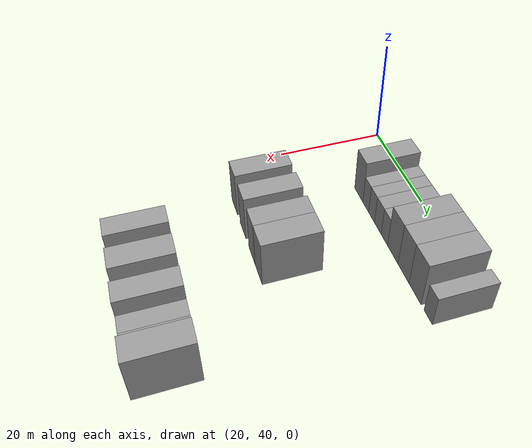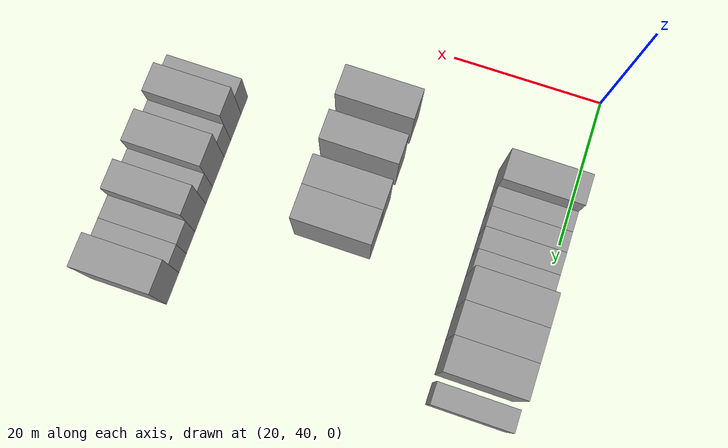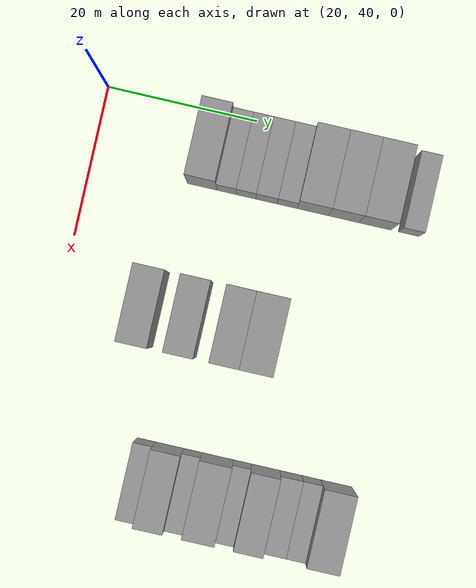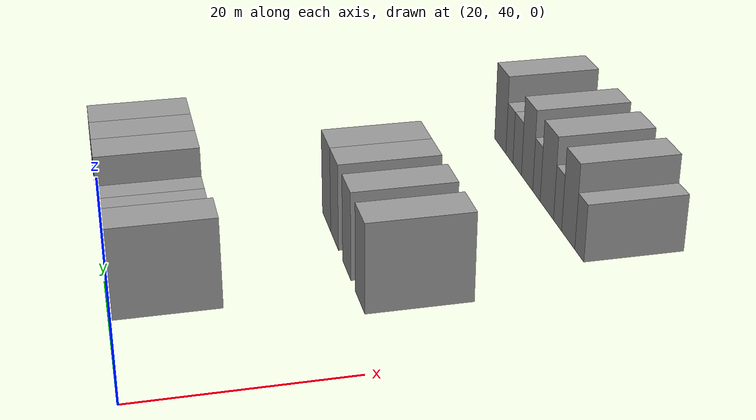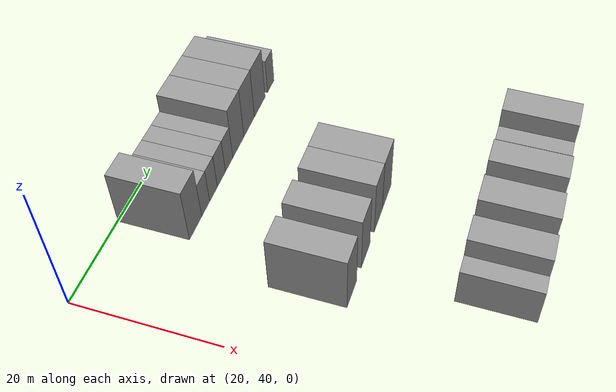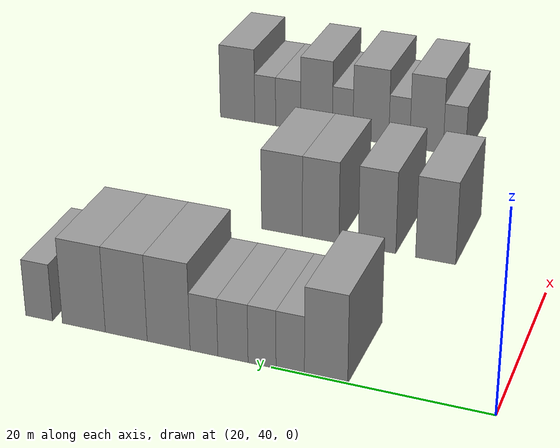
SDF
<sdf version="1.6">
 <world name="default">
  <model name="building_76">
   <static>1</static>
   <pose>25.0000 54.9735 0 0.000000 0.000000 0.000000</pose>
   <link name="link">
    <pose>0 0 4.50 0 0 0</pose>
    <collision name="collision"><geometry><box><size>10.0000 3.9475 9.0000</size></box></geometry></collision>
    <visual name="visual">
     <cast_shadows>0</cast_shadows>
     <geometry><box><size>10.0000 3.9475 9.0000</size></box></geometry>
     <material>
      <script>
       <uri>model://grey_wall/materials/scripts</uri>
       <uri>model://grey_wall/materials/textures</uri>
       <name>vrc/grey_wall</name>
      </script>
     </material>
    </visual>
   </link>
  </model>
  <model name="building_77">
   <static>1</static>
   <pose>25.0000 58.2599 0 0.000000 0.000000 0.000000</pose>
   <link name="link">
    <pose>0 0 3.00 0 0 0</pose>
    <collision name="collision"><geometry><box><size>10.0000 2.6252 6.0000</size></box></geometry></collision>
    <visual name="visual">
     <cast_shadows>0</cast_shadows>
     <geometry><box><size>10.0000 2.6252 6.0000</size></box></geometry>
     <material>
      <script>
       <uri>model://grey_wall/materials/scripts</uri>
       <uri>model://grey_wall/materials/textures</uri>
       <name>vrc/grey_wall</name>
      </script>
     </material>
    </visual>
   </link>
  </model>
  <model name="building_78">
   <static>1</static>
   <pose>25.0000 60.8814 0 0.000000 0.000000 0.000000</pose>
   <link name="link">
    <pose>0 0 3.00 0 0 0</pose>
    <collision name="collision"><geometry><box><size>10.0000 2.6178 6.0000</size></box></geometry></collision>
    <visual name="visual">
     <cast_shadows>0</cast_shadows>
     <geometry><box><size>10.0000 2.6178 6.0000</size></box></geometry>
     <material>
      <script>
       <uri>model://grey_wall/materials/scripts</uri>
       <uri>model://grey_wall/materials/textures</uri>
       <name>vrc/grey_wall</name>
      </script>
     </material>
    </visual>
   </link>
  </model>
  <model name="building_79">
   <static>1</static>
   <pose>25.0000 63.6194 0 0.000000 0.000000 0.000000</pose>
   <link name="link">
    <pose>0 0 3.00 0 0 0</pose>
    <collision name="collision"><geometry><box><size>10.0000 2.8582 6.0000</size></box></geometry></collision>
    <visual name="visual">
     <cast_shadows>0</cast_shadows>
     <geometry><box><size>10.0000 2.8582 6.0000</size></box></geometry>
     <material>
      <script>
       <uri>model://grey_wall/materials/scripts</uri>
       <uri>model://grey_wall/materials/textures</uri>
       <name>vrc/grey_wall</name>
      </script>
     </material>
    </visual>
   </link>
  </model>
  <model name="building_80">
   <static>1</static>
   <pose>25.0000 66.3783 0 0.000000 0.000000 0.000000</pose>
   <link name="link">
    <pose>0 0 3.00 0 0 0</pose>
    <collision name="collision"><geometry><box><size>10.0000 2.6597 6.0000</size></box></geometry></collision>
    <visual name="visual">
     <cast_shadows>0</cast_shadows>
     <geometry><box><size>10.0000 2.6597 6.0000</size></box></geometry>
     <material>
      <script>
       <uri>model://grey_wall/materials/scripts</uri>
       <uri>model://grey_wall/materials/textures</uri>
       <name>vrc/grey_wall</name>
      </script>
     </material>
    </visual>
   </link>
  </model>
  <model name="building_81">
   <static>1</static>
   <pose>25.0000 69.7934 0 0.000000 0.000000 0.000000</pose>
   <link name="link">
    <pose>0 0 4.50 0 0 0</pose>
    <collision name="collision"><geometry><box><size>10.0000 4.1704 9.0000</size></box></geometry></collision>
    <visual name="visual">
     <cast_shadows>0</cast_shadows>
     <geometry><box><size>10.0000 4.1704 9.0000</size></box></geometry>
     <material>
      <script>
       <uri>model://grey_wall/materials/scripts</uri>
       <uri>model://grey_wall/materials/textures</uri>
       <name>vrc/grey_wall</name>
      </script>
     </material>
    </visual>
   </link>
  </model>
  <model name="building_82">
   <static>1</static>
   <pose>25.0000 73.9491 0 0.000000 0.000000 0.000000</pose>
   <link name="link">
    <pose>0 0 4.50 0 0 0</pose>
    <collision name="collision"><geometry><box><size>10.0000 4.1411 9.0000</size></box></geometry></collision>
    <visual name="visual">
     <cast_shadows>0</cast_shadows>
     <geometry><box><size>10.0000 4.1411 9.0000</size></box></geometry>
     <material>
      <script>
       <uri>model://grey_wall/materials/scripts</uri>
       <uri>model://grey_wall/materials/textures</uri>
       <name>vrc/grey_wall</name>
      </script>
     </material>
    </visual>
   </link>
  </model>
  <model name="building_83">
   <static>1</static>
   <pose>25.0000 78.1835 0 0.000000 0.000000 0.000000</pose>
   <link name="link">
    <pose>0 0 4.50 0 0 0</pose>
    <collision name="collision"><geometry><box><size>10.0000 4.3276 9.0000</size></box></geometry></collision>
    <visual name="visual">
     <cast_shadows>0</cast_shadows>
     <geometry><box><size>10.0000 4.3276 9.0000</size></box></geometry>
     <material>
      <script>
       <uri>model://grey_wall/materials/scripts</uri>
       <uri>model://grey_wall/materials/textures</uri>
       <name>vrc/grey_wall</name>
      </script>
     </material>
    </visual>
   </link>
  </model>
  <model name="building_84">
   <static>1</static>
   <pose>25.0000 82.7207 0 0.000000 0.000000 0.000000</pose>
   <link name="link">
    <pose>0 0 3.00 0 0 0</pose>
    <collision name="collision"><geometry><box><size>10.0000 2.7469 6.0000</size></box></geometry></collision>
    <visual name="visual">
     <cast_shadows>0</cast_shadows>
     <geometry><box><size>10.0000 2.7469 6.0000</size></box></geometry>
     <material>
      <script>
       <uri>model://grey_wall/materials/scripts</uri>
       <uri>model://grey_wall/materials/textures</uri>
       <name>vrc/grey_wall</name>
      </script>
     </material>
    </visual>
   </link>
  </model>
  <model name="building_198">
   <static>1</static>
   <pose>47.0000 51.3048 0 0.000000 0.000000 0.000000</pose>
   <link name="link">
    <pose>0 0 4.50 0 0 0</pose>
    <collision name="collision"><geometry><box><size>10.0000 4.0379 9.0000</size></box></geometry></collision>
    <visual name="visual">
     <cast_shadows>0</cast_shadows>
     <geometry><box><size>10.0000 4.0379 9.0000</size></box></geometry>
     <material>
      <script>
       <uri>model://grey_wall/materials/scripts</uri>
       <uri>model://grey_wall/materials/textures</uri>
       <name>vrc/grey_wall</name>
      </script>
     </material>
    </visual>
   </link>
  </model>
  <model name="building_199">
   <static>1</static>
   <pose>47.0000 57.2557 0 0.000000 0.000000 0.000000</pose>
   <link name="link">
    <pose>0 0 4.50 0 0 0</pose>
    <collision name="collision"><geometry><box><size>10.0000 3.8639 9.0000</size></box></geometry></collision>
    <visual name="visual">
     <cast_shadows>0</cast_shadows>
     <geometry><box><size>10.0000 3.8639 9.0000</size></box></geometry>
     <material>
      <script>
       <uri>model://grey_wall/materials/scripts</uri>
       <uri>model://grey_wall/materials/textures</uri>
       <name>vrc/grey_wall</name>
      </script>
     </material>
    </visual>
   </link>
  </model>
  <model name="building_200">
   <static>1</static>
   <pose>47.0000 63.1103 0 0.000000 0.000000 0.000000</pose>
   <link name="link">
    <pose>0 0 4.50 0 0 0</pose>
    <collision name="collision"><geometry><box><size>10.0000 3.8454 9.0000</size></box></geometry></collision>
    <visual name="visual">
     <cast_shadows>0</cast_shadows>
     <geometry><box><size>10.0000 3.8454 9.0000</size></box></geometry>
     <material>
      <script>
       <uri>model://grey_wall/materials/scripts</uri>
       <uri>model://grey_wall/materials/textures</uri>
       <name>vrc/grey_wall</name>
      </script>
     </material>
    </visual>
   </link>
  </model>
  <model name="building_201">
   <static>1</static>
   <pose>47.0000 67.2042 0 0.000000 0.000000 0.000000</pose>
   <link name="link">
    <pose>0 0 4.50 0 0 0</pose>
    <collision name="collision"><geometry><box><size>10.0000 4.3424 9.0000</size></box></geometry></collision>
    <visual name="visual">
     <cast_shadows>0</cast_shadows>
     <geometry><box><size>10.0000 4.3424 9.0000</size></box></geometry>
     <material>
      <script>
       <uri>model://grey_wall/materials/scripts</uri>
       <uri>model://grey_wall/materials/textures</uri>
       <name>vrc/grey_wall</name>
      </script>
     </material>
    </visual>
   </link>
  </model>
  <model name="building_316">
   <static>1</static>
   <pose>69.0000 55.2923 0 0.000000 0.000000 0.000000</pose>
   <link name="link">
    <pose>0 0 3.00 0 0 0</pose>
    <collision name="collision"><geometry><box><size>10.0000 2.5307 6.0000</size></box></geometry></collision>
    <visual name="visual">
     <cast_shadows>0</cast_shadows>
     <geometry><box><size>10.0000 2.5307 6.0000</size></box></geometry>
     <material>
      <script>
       <uri>model://grey_wall/materials/scripts</uri>
       <uri>model://grey_wall/materials/textures</uri>
       <name>vrc/grey_wall</name>
      </script>
     </material>
    </visual>
   </link>
  </model>
  <model name="building_317">
   <static>1</static>
   <pose>69.0000 58.4613 0 0.000000 0.000000 0.000000</pose>
   <link name="link">
    <pose>0 0 4.50 0 0 0</pose>
    <collision name="collision"><geometry><box><size>10.0000 3.8073 9.0000</size></box></geometry></collision>
    <visual name="visual">
     <cast_shadows>0</cast_shadows>
     <geometry><box><size>10.0000 3.8073 9.0000</size></box></geometry>
     <material>
      <script>
       <uri>model://grey_wall/materials/scripts</uri>
       <uri>model://grey_wall/materials/textures</uri>
       <name>vrc/grey_wall</name>
      </script>
     </material>
    </visual>
   </link>
  </model>
  <model name="building_318">
   <static>1</static>
   <pose>69.0000 61.5698 0 0.000000 0.000000 0.000000</pose>
   <link name="link">
    <pose>0 0 3.00 0 0 0</pose>
    <collision name="collision"><geometry><box><size>10.0000 2.4098 6.0000</size></box></geometry></collision>
    <visual name="visual">
     <cast_shadows>0</cast_shadows>
     <geometry><box><size>10.0000 2.4098 6.0000</size></box></geometry>
     <material>
      <script>
       <uri>model://grey_wall/materials/scripts</uri>
       <uri>model://grey_wall/materials/textures</uri>
       <name>vrc/grey_wall</name>
      </script>
     </material>
    </visual>
   </link>
  </model>
  <model name="building_319">
   <static>1</static>
   <pose>69.0000 64.8631 0 0.000000 0.000000 0.000000</pose>
   <link name="link">
    <pose>0 0 4.50 0 0 0</pose>
    <collision name="collision"><geometry><box><size>10.0000 4.1768 9.0000</size></box></geometry></collision>
    <visual name="visual">
     <cast_shadows>0</cast_shadows>
     <geometry><box><size>10.0000 4.1768 9.0000</size></box></geometry>
     <material>
      <script>
       <uri>model://grey_wall/materials/scripts</uri>
       <uri>model://grey_wall/materials/textures</uri>
       <name>vrc/grey_wall</name>
      </script>
     </material>
    </visual>
   </link>
  </model>
  <model name="building_320">
   <static>1</static>
   <pose>69.0000 68.1564 0 0.000000 0.000000 0.000000</pose>
   <link name="link">
    <pose>0 0 3.00 0 0 0</pose>
    <collision name="collision"><geometry><box><size>10.0000 2.4099 6.0000</size></box></geometry></collision>
    <visual name="visual">
     <cast_shadows>0</cast_shadows>
     <geometry><box><size>10.0000 2.4099 6.0000</size></box></geometry>
     <material>
      <script>
       <uri>model://grey_wall/materials/scripts</uri>
       <uri>model://grey_wall/materials/textures</uri>
       <name>vrc/grey_wall</name>
      </script>
     </material>
    </visual>
   </link>
  </model>
  <model name="building_321">
   <static>1</static>
   <pose>69.0000 71.2574 0 0.000000 0.000000 0.000000</pose>
   <link name="link">
    <pose>0 0 4.50 0 0 0</pose>
    <collision name="collision"><geometry><box><size>10.0000 3.7920 9.0000</size></box></geometry></collision>
    <visual name="visual">
     <cast_shadows>0</cast_shadows>
     <geometry><box><size>10.0000 3.7920 9.0000</size></box></geometry>
     <material>
      <script>
       <uri>model://grey_wall/materials/scripts</uri>
       <uri>model://grey_wall/materials/textures</uri>
       <name>vrc/grey_wall</name>
      </script>
     </material>
    </visual>
   </link>
  </model>
  <model name="building_322">
   <static>1</static>
   <pose>69.0000 74.6479 0 0.000000 0.000000 0.000000</pose>
   <link name="link">
    <pose>0 0 3.00 0 0 0</pose>
    <collision name="collision"><geometry><box><size>10.0000 2.9891 6.0000</size></box></geometry></collision>
    <visual name="visual">
     <cast_shadows>0</cast_shadows>
     <geometry><box><size>10.0000 2.9891 6.0000</size></box></geometry>
     <material>
      <script>
       <uri>model://grey_wall/materials/scripts</uri>
       <uri>model://grey_wall/materials/textures</uri>
       <name>vrc/grey_wall</name>
      </script>
     </material>
    </visual>
   </link>
  </model>
  <model name="building_323">
   <static>1</static>
   <pose>69.0000 77.4070 0 0.000000 0.000000 0.000000</pose>
   <link name="link">
    <pose>0 0 3.00 0 0 0</pose>
    <collision name="collision"><geometry><box><size>10.0000 2.5292 6.0000</size></box></geometry></collision>
    <visual name="visual">
     <cast_shadows>0</cast_shadows>
     <geometry><box><size>10.0000 2.5292 6.0000</size></box></geometry>
     <material>
      <script>
       <uri>model://grey_wall/materials/scripts</uri>
       <uri>model://grey_wall/materials/textures</uri>
       <name>vrc/grey_wall</name>
      </script>
     </material>
    </visual>
   </link>
  </model>
  <model name="building_324">
   <static>1</static>
   <pose>69.0000 80.7782 0 0.000000 0.000000 0.000000</pose>
   <link name="link">
    <pose>0 0 4.50 0 0 0</pose>
    <collision name="collision"><geometry><box><size>10.0000 4.2132 9.0000</size></box></geometry></collision>
    <visual name="visual">
     <cast_shadows>0</cast_shadows>
     <geometry><box><size>10.0000 4.2132 9.0000</size></box></geometry>
     <material>
      <script>
       <uri>model://grey_wall/materials/scripts</uri>
       <uri>model://grey_wall/materials/textures</uri>
       <name>vrc/grey_wall</name>
      </script>
     </material>
    </visual>
   </link>
  </model>
 </world>
</sdf>
